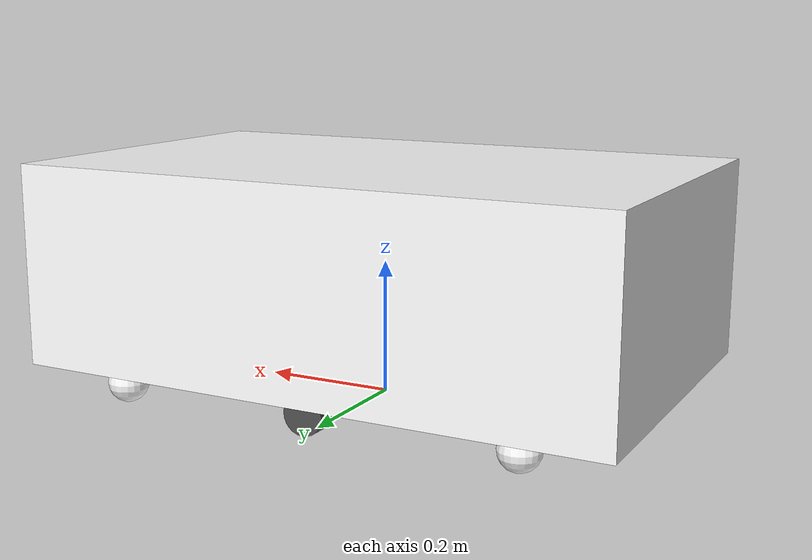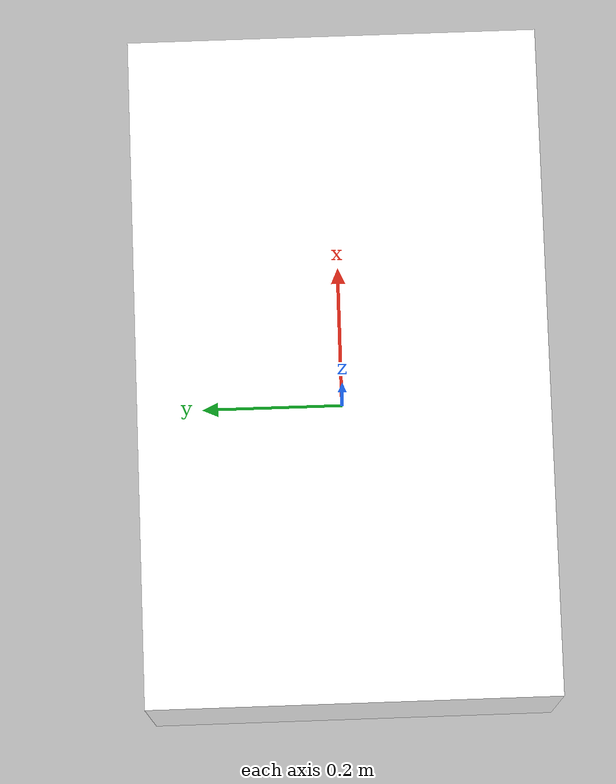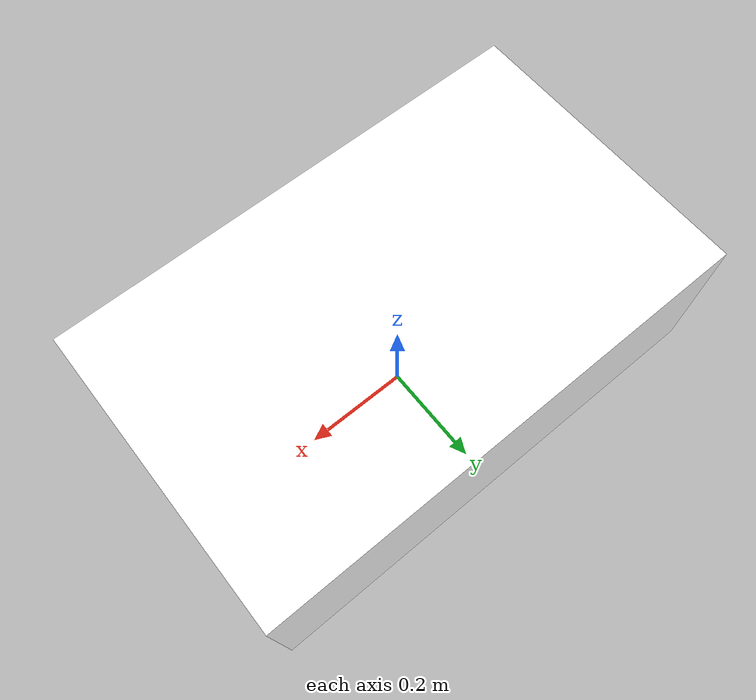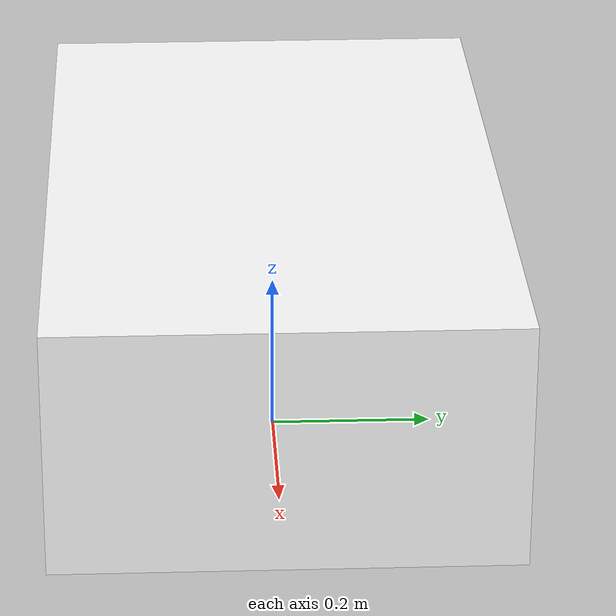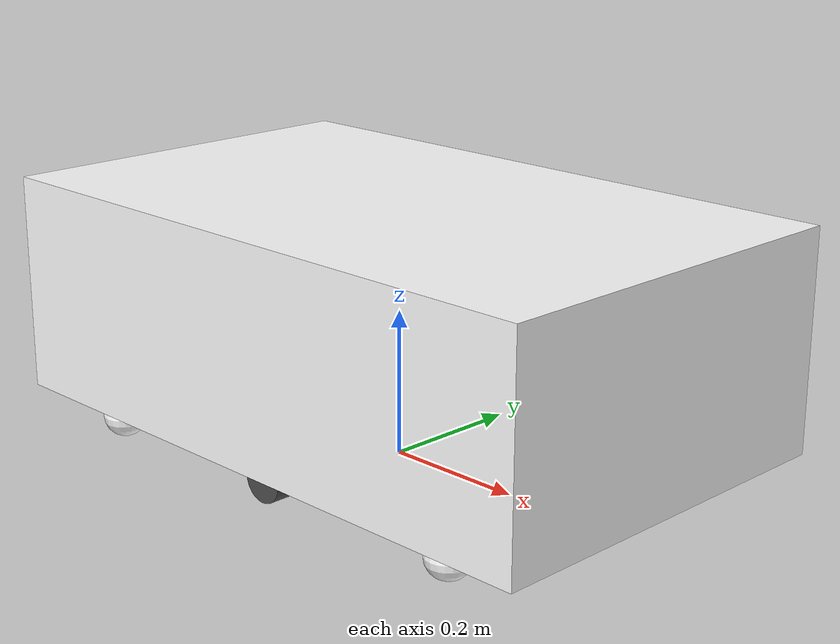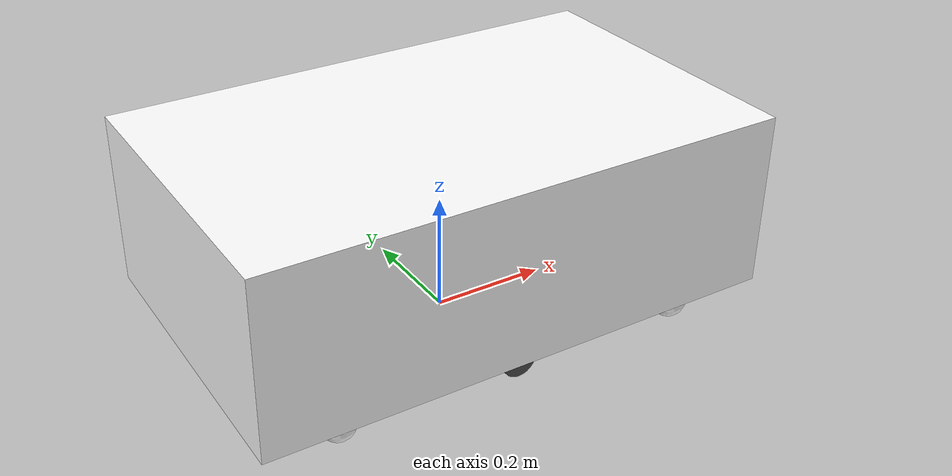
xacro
<?xml version="1.0"?>
<robot xmlns:xacro="http://www.ros.org/wiki/xacro" name="mir100">

<xacro:include filename="$(find mir100_description)/urdf/wheel.urdf.xacro" />

<!--                    Property list                             -->
<!-- Robot's dimensions -->
<xacro:property name="body_height" value="0.300" />
<xacro:property name="body_width" value="0.550" />
<xacro:property name="body_len" value="0.900" />
<xacro:property name="robot_height" value="0.350" />

<!-- Mathematical constant -->
<xacro:property name="deg2rad" value="0.017453293" />

<!-- Castor wheels -->
<xacro:property name="base_x_origin_to_castorwheel_origin" value="0.310" />
<xacro:property name="base_y_origin_to_castorwheel_origin" value="${base_y_origin_to_wheel_origin}" />

<!-- Motor wheels -->
<xacro:property name="wheel_radius" value="0.03" />
<xacro:property name="wheel_thickness" value="0.03" />
<xacro:property name="wheel_ext_s2s_distance" value="0.480" />
<xacro:property name="base_x_origin_to_wheel_origin" value="0.0" />
<xacro:property name="base_y_origin_to_wheel_origin" value="${(wheel_ext_s2s_distance-wheel_thickness)/2}" />
<xacro:property name="base_z_origin_to_wheel_origin" value="${wheel_radius-robot_height}" />

<!-- All mass in kg-->
<xacro:property name="motor_wheel_mass" value="1.5" />
<xacro:property name="castor_wheel_mass" value="1.5" />
<xacro:property name="body_mass" value="10" />

<!--                    Material definition                     -->
<material name="black">
	<color rgba="0 0 0 1"/>
</material>

<material name="white">
	<color rgba="1 1 1 1"/>
</material>

<material name="blue">
	<color rgba="0 0 0.8 1"/>
</material>

<!--                    Inertia basic shape macro                     -->
<xacro:macro name="cylinder_inertia" params="m r h">
  <inertia  ixx="${m*(3*r*r+h*h)/12}" ixy = "0" ixz = "0"
              iyy="${m*(3*r*r+h*h)/12}" iyz = "0"
              izz="${m*r*r/2}" />
</xacro:macro>

<xacro:macro name="box_inertia" params="m x y z">
  <inertia  ixx="${m*(y*y+z*z)/12}" ixy = "0" ixz = "0"
            iyy="${m*(x*x+z*z)/12}" iyz = "0"
            izz="${m*(x*x+z*z)/12}" />
</xacro:macro>

<!--                    Base footprint                        -->
<!-- Link that is on the ground right below base_link origin  -->
<link name="base_footprint">
  <inertial>
    <mass value="0.0001" />
    <origin xyz="0 0 0" />
    <inertia
      ixx="0.0001" ixy="0.0" ixz="0.0"
      iyy="0.0001" iyz="0.0"
      izz="0.0001" />
  </inertial>
  <visual>
      <origin xyz="0 0 0" rpy="0 0 0" />
      <geometry>
          <box size="0.001 0.001 0.001" />
      </geometry>
  </visual>
</link>

<gazebo reference="base_footprint">
  <turnGravityOff>false</turnGravityOff>
</gazebo>

<joint name="base_footprint_joint" type="fixed">
  <origin xyz="0 0 ${robot_height}" rpy="0 0 0" />
  <parent link="base_footprint"/>
  <child link="base_link" />
</joint>

<!--                    Base link                           -->
<link name="base_link">
	<visual>
			<geometry>
				<box size="${body_len} ${body_width} ${body_height}"/>
			</geometry>
			<origin rpy="0 0 0" xyz="0 0 -${body_height/2}"/>
		<material name="white"/>
	</visual>
	<collision>
		<geometry>
			<box size="${body_len} ${body_width} ${body_height}"/>
		</geometry>
		<origin rpy="0 0 0" xyz="0 0 -${body_height/2}"/>
	</collision>
	<inertial>
		<mass value="${body_mass}"/>
    <origin xyz="0 0 -${body_height/2}" /> <!-- center of gravity relative to the link's reference frame). -->
		<box_inertia  m="${body_mass}" x="${body_len}" y="${body_width}" z="${body_height}" />
	</inertial>
</link>

<gazebo reference="base_link">
	<turnGravityOff>false</turnGravityOff>
</gazebo>

<!--                    Motor wheels                        -->
<wheel lr="left" parent="base_link" translateX="0" translateY="1" flipY="1"/>
<wheel lr="right" parent="base_link" translateX="0" translateY="-1" flipY="1"/>

<!--                    Castor wheels                       -->
<!-- Left front -->
<link name="left_front_castor_wheel">
	<visual>
		<geometry>
			<sphere radius="${wheel_radius}"/>
		</geometry>
		<material name="white"/>
	</visual>
  <collision>
    <geometry>
      <sphere radius="${wheel_radius}" />
    </geometry>
  </collision>
  <inertial>
    <mass value="${castor_wheel_mass}" />
    <origin xyz="0 0 0" />
    <inertia ixx="0.001" ixy="0.0" ixz="0.0"
             iyy="0.001" iyz="0.0"
             izz="0.001" />
  </inertial>
</link>

<joint name="base_to_left_front_castor_wheel" type="fixed">
	<parent link="base_link"/>
	<child link="left_front_castor_wheel"/>
	<origin rpy="0 0 0" xyz="${base_x_origin_to_castorwheel_origin} ${base_y_origin_to_castorwheel_origin} ${wheel_radius-robot_height}"/>
</joint>

<!-- Left rear -->
<link name="left_rear_castor_wheel">
	<visual>
		<geometry>
			<sphere radius="${wheel_radius}"/>
		</geometry>
		<material name="white"/>
	</visual>
  <collision>
    <geometry>
      <sphere radius="${wheel_radius}" />
    </geometry>
  </collision>
  <inertial>
    <mass value="${castor_wheel_mass}" />
    <origin xyz="0 0 0" />
    <inertia ixx="0.001" ixy="0.0" ixz="0.0"
             iyy="0.001" iyz="0.0"
             izz="0.001" />
  </inertial>
</link>

<joint name="base_to_left_rear_castor_wheel" type="fixed">
	<parent link="base_link"/>
	<child link="left_rear_castor_wheel"/>
	<origin rpy="0 0 0" xyz="-${base_x_origin_to_castorwheel_origin} ${base_y_origin_to_castorwheel_origin} ${wheel_radius-robot_height}"/>
</joint>

<!-- Right front -->
<link name="right_front_castor_wheel">
	<visual>
		<geometry>
			<sphere radius="${wheel_radius}"/>
		</geometry>
		<material name="white"/>
	</visual>
  <collision>
    <geometry>
      <sphere radius="${wheel_radius}" />
    </geometry>
  </collision>
  <inertial>
    <mass value="${castor_wheel_mass}" />
    <origin xyz="0 0 0" />
    <inertia ixx="0.001" ixy="0.0" ixz="0.0"
             iyy="0.001" iyz="0.0"
             izz="0.001" />
  </inertial>
</link>

<joint name="base_to_right_front_castor_wheel" type="fixed">
	<parent link="base_link"/>
	<child link="right_front_castor_wheel"/>
	<origin rpy="0 0 0" xyz="${base_x_origin_to_castorwheel_origin} -${base_y_origin_to_castorwheel_origin} ${wheel_radius-robot_height}"/>
</joint>

<!-- Left rear -->
<link name="right_rear_castor_wheel">
	<visual>
		<geometry>
			<sphere radius="${wheel_radius}"/>
		</geometry>
		<material name="white"/>
	</visual>
  <collision>
    <geometry>
      <sphere radius="${wheel_radius}" />
    </geometry>
  </collision>
  <inertial>
    <mass value="${castor_wheel_mass}" />
    <origin xyz="0 0 0" />
    <inertia ixx="0.001" ixy="0.0" ixz="0.0"
             iyy="0.001" iyz="0.0"
             izz="0.001" />
  </inertial>
</link>

<joint name="base_to_right_rear_castor_wheel" type="fixed">
	<parent link="base_link"/>
	<child link="right_rear_castor_wheel"/>
	<origin rpy="0 0 0" xyz="-${base_x_origin_to_castorwheel_origin} -${base_y_origin_to_castorwheel_origin} ${wheel_radius-robot_height}"/>
</joint>

<!--                    Differential drive controller       -->

  <!-- Gazebo plugin for ROS Control -->
  <gazebo>
    <plugin name="gazebo_ros_control" filename="libgazebo_ros_control.so">
      <robotNamespace>/</robotNamespace>
    </plugin>
</gazebo>

  <!--                GAZEBO RELATED PART                             -->

</robot>

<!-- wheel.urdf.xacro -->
<robot name="wheel" xmlns:xacro="http://www.ros.org/wiki/xacro">

  <xacro:macro name="wheel" params="lr parent translateX translateY flipY"> <!--lr: left, right -->
    <link name="${lr}_wheel">
      <visual>
        <origin xyz="0 0 0" rpy="${flipY*pi/2} 0  0 " />
        <geometry>
          <cylinder length="${wheel_thickness}" radius="${wheel_radius}" />
        </geometry>
        <material name="DarkGray" />
      </visual>
      <collision>
        <origin xyz="0 0 0" rpy="${flipY*pi/2} 0 0 " />
        <geometry>
          <cylinder length="${wheel_thickness}" radius="${wheel_radius}" />
        </geometry>
      </collision>
      <inertial>
        <mass value="${motor_wheel_mass}" />
        <origin xyz="0 0 0" />
        <cylinder_inertia  m="${motor_wheel_mass}" r="${wheel_radius}" h="${wheel_thickness}" />
      </inertial>
    </link>

    <gazebo reference="${lr}_wheel">
      <mu1 value="1.0"/>
      <mu2 value="1.0"/>
      <kp  value="10000000.0" />
      <kd  value="1.0" />
      <fdir1 value="1 0 0"/>
      <material>Gazebo/Grey</material>
      <turnGravityOff>false</turnGravityOff>
    </gazebo>

    <joint name="${lr}_wheel_joint" type="continuous">
      <parent link="${parent}"/>
      <child link="${lr}_wheel"/>
      <origin xyz="${translateX * base_x_origin_to_wheel_origin} ${translateY * base_y_origin_to_wheel_origin} ${base_z_origin_to_wheel_origin}" rpy="0 0 0" />
      <axis xyz="0 1 0" rpy="0  0" />
      <joint_properties damping="0.0" friction="0.0"/>
    </joint>

    <!-- Transmission is important to link the joints and the controller -->
    <transmission name="${lr}_wheel_joint_trans">
      <type>transmission_interface/SimpleTransmission</type>
      <actuator name="${lr}_wheel_motor">
        <mechanicalReduction>1</mechanicalReduction>
      </actuator>
      <joint name="${lr}_wheel_joint">
        <hardwareInterface>VelocityJointInterface</hardwareInterface>
      </joint>
    </transmission>

  </xacro:macro>
</robot>
